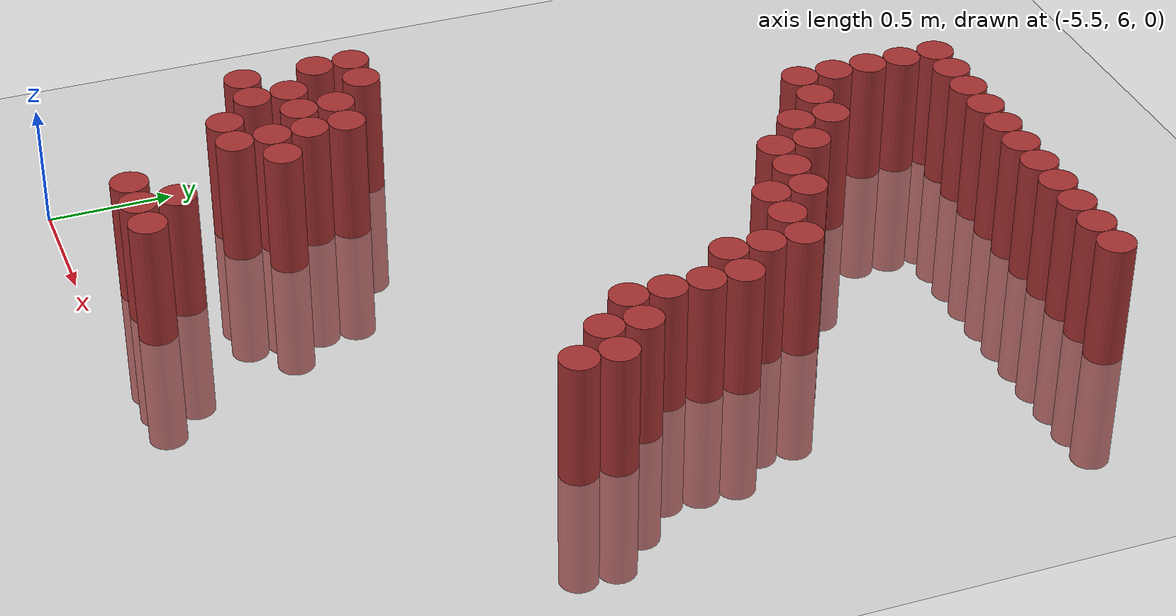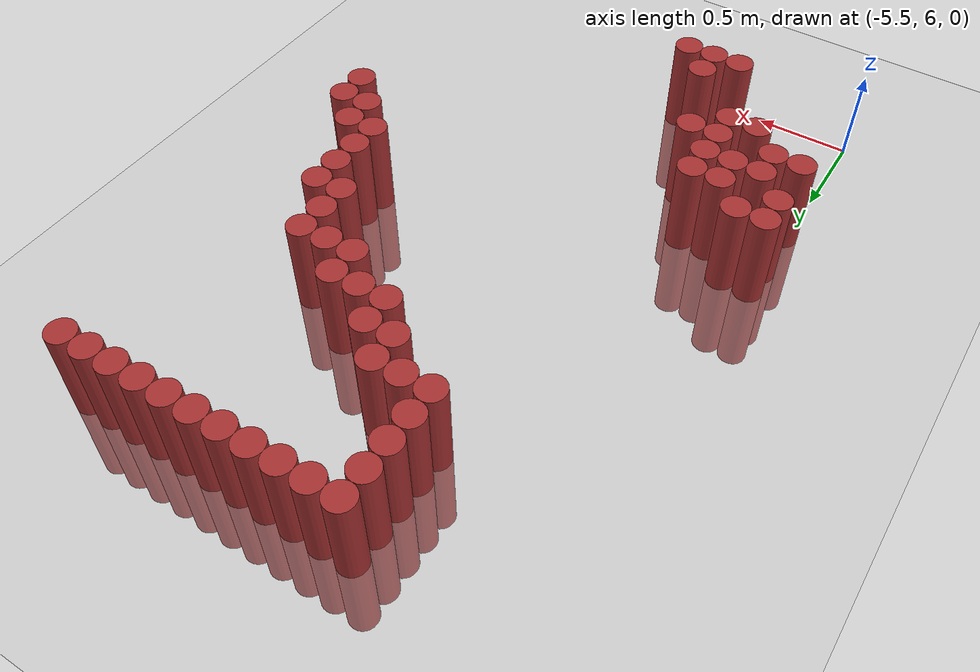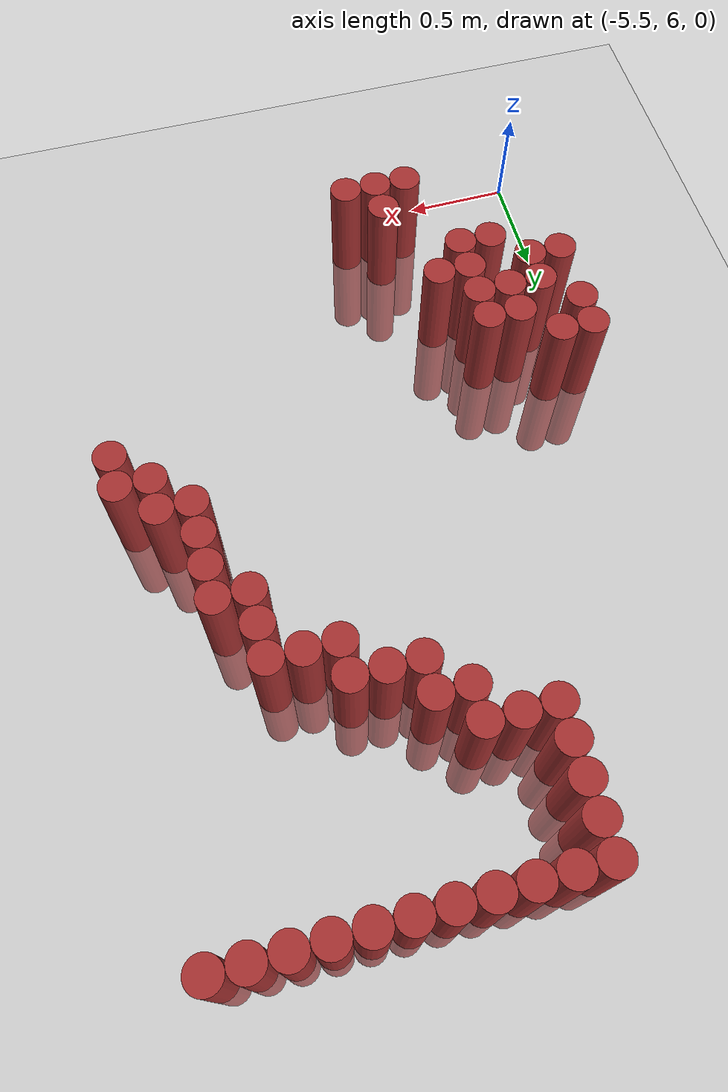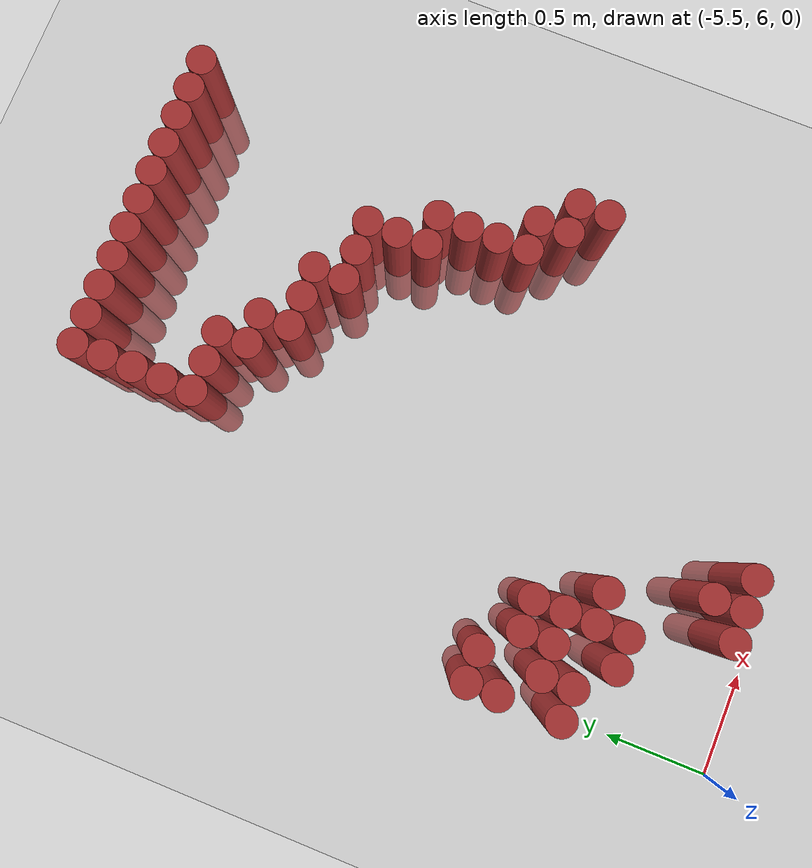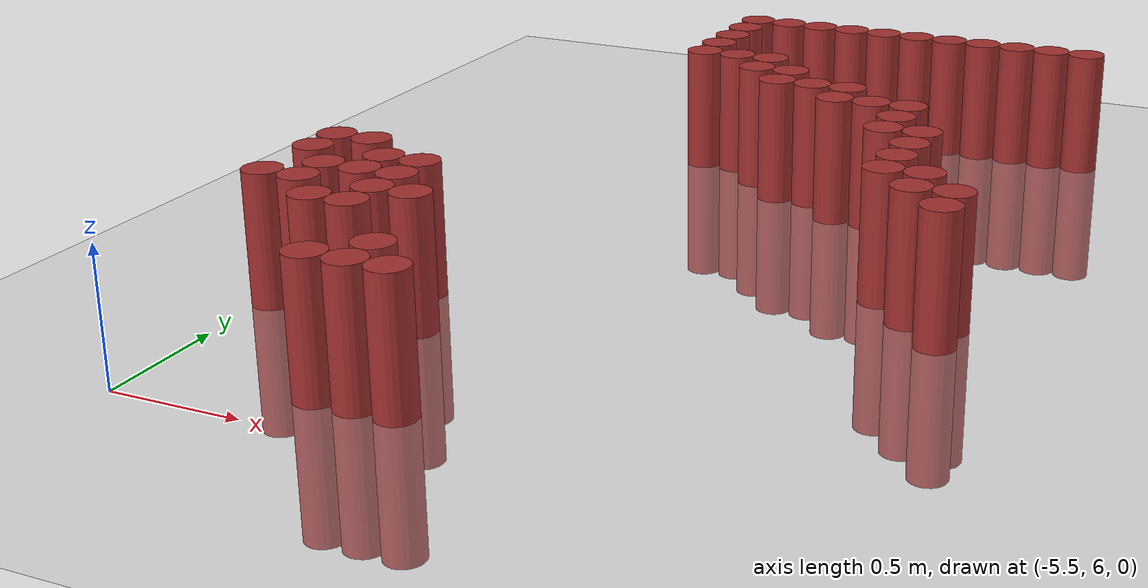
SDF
<sdf version="1.6">
 <world name="default">
  <model name="ground_plane">
   <static>1</static>
   <link name="link">
    <collision name="collision">
     <geometry><plane><normal>0 0 1</normal><size>100 100</size></plane></geometry>
     <surface><friction><ode><mu>100</mu><mu2>50</mu2></ode></friction></surface>
    </collision>
    <visual name="visual">
     <cast_shadows>0</cast_shadows>
     <geometry><plane><normal>0 0 1</normal><size>100 100</size></plane></geometry>
     <material>
      <script><uri>file://media/materials/scripts/gazebo.material</uri><name>Gazebo/Grey</name></script>
     </material>
    </visual>
   </link>
  </model>
  <model name="unit_cylinder_263">
   <static>1</static>
   <pose>-5.475000 6.825000 0.000000 0.000000 0.000000 0.000000</pose>
   <link name="link">
    <inertial>
     <mass>1</mass>
     <inertia><ixx>0.145833</ixx><ixy>0</ixy><ixz>0</ixz><iyy>0.145833</iyy><iyz>0</iyz><izz>0.125</izz></inertia>
    </inertial>
    <collision name="collision">
     <geometry><cylinder><radius>0.075000</radius><length>1</length></cylinder></geometry>
    </collision>
    <visual name="visual">
     <geometry><cylinder><radius>0.075000</radius><length>1</length></cylinder></geometry>
     <material>
      <ambient>0.648000 0.192000 0.192000 1</ambient>
      <diffuse>0.648000 0.192000 0.192000 1</diffuse>
     </material>
     <material>
      <script><name>Gazebo/Grey</name><uri>file://media/materials/scripts/gazebo.material</uri></script>
     </material>
    </visual>
   </link>
  </model>
  <model name="unit_cylinder_264">
   <static>1</static>
   <pose>-5.475000 7.125000 0.000000 0.000000 0.000000 0.000000</pose>
   <link name="link">
    <inertial>
     <mass>1</mass>
     <inertia><ixx>0.145833</ixx><ixy>0</ixy><ixz>0</ixz><iyy>0.145833</iyy><iyz>0</iyz><izz>0.125</izz></inertia>
    </inertial>
    <collision name="collision">
     <geometry><cylinder><radius>0.075000</radius><length>1</length></cylinder></geometry>
    </collision>
    <visual name="visual">
     <geometry><cylinder><radius>0.075000</radius><length>1</length></cylinder></geometry>
     <material>
      <ambient>0.648000 0.192000 0.192000 1</ambient>
      <diffuse>0.648000 0.192000 0.192000 1</diffuse>
     </material>
     <material>
      <script><name>Gazebo/Grey</name><uri>file://media/materials/scripts/gazebo.material</uri></script>
     </material>
    </visual>
   </link>
  </model>
  <model name="unit_cylinder_265">
   <static>1</static>
   <pose>-5.475000 7.275000 0.000000 0.000000 0.000000 0.000000</pose>
   <link name="link">
    <inertial>
     <mass>1</mass>
     <inertia><ixx>0.145833</ixx><ixy>0</ixy><ixz>0</ixz><iyy>0.145833</iyy><iyz>0</iyz><izz>0.125</izz></inertia>
    </inertial>
    <collision name="collision">
     <geometry><cylinder><radius>0.075000</radius><length>1</length></cylinder></geometry>
    </collision>
    <visual name="visual">
     <geometry><cylinder><radius>0.075000</radius><length>1</length></cylinder></geometry>
     <material>
      <ambient>0.648000 0.192000 0.192000 1</ambient>
      <diffuse>0.648000 0.192000 0.192000 1</diffuse>
     </material>
     <material>
      <script><name>Gazebo/Grey</name><uri>file://media/materials/scripts/gazebo.material</uri></script>
     </material>
    </visual>
   </link>
  </model>
  <model name="unit_cylinder_266">
   <static>1</static>
   <pose>-5.325000 6.825000 0.000000 0.000000 0.000000 0.000000</pose>
   <link name="link">
    <inertial>
     <mass>1</mass>
     <inertia><ixx>0.145833</ixx><ixy>0</ixy><ixz>0</ixz><iyy>0.145833</iyy><iyz>0</iyz><izz>0.125</izz></inertia>
    </inertial>
    <collision name="collision">
     <geometry><cylinder><radius>0.075000</radius><length>1</length></cylinder></geometry>
    </collision>
    <visual name="visual">
     <geometry><cylinder><radius>0.075000</radius><length>1</length></cylinder></geometry>
     <material>
      <ambient>0.648000 0.192000 0.192000 1</ambient>
      <diffuse>0.648000 0.192000 0.192000 1</diffuse>
     </material>
     <material>
      <script><name>Gazebo/Grey</name><uri>file://media/materials/scripts/gazebo.material</uri></script>
     </material>
    </visual>
   </link>
  </model>
  <model name="unit_cylinder_267">
   <static>1</static>
   <pose>-5.325000 6.975000 0.000000 0.000000 0.000000 0.000000</pose>
   <link name="link">
    <inertial>
     <mass>1</mass>
     <inertia><ixx>0.145833</ixx><ixy>0</ixy><ixz>0</ixz><iyy>0.145833</iyy><iyz>0</iyz><izz>0.125</izz></inertia>
    </inertial>
    <collision name="collision">
     <geometry><cylinder><radius>0.075000</radius><length>1</length></cylinder></geometry>
    </collision>
    <visual name="visual">
     <geometry><cylinder><radius>0.075000</radius><length>1</length></cylinder></geometry>
     <material>
      <ambient>0.648000 0.192000 0.192000 1</ambient>
      <diffuse>0.648000 0.192000 0.192000 1</diffuse>
     </material>
     <material>
      <script><name>Gazebo/Grey</name><uri>file://media/materials/scripts/gazebo.material</uri></script>
     </material>
    </visual>
   </link>
  </model>
  <model name="unit_cylinder_268">
   <static>1</static>
   <pose>-5.325000 7.275000 0.000000 0.000000 0.000000 0.000000</pose>
   <link name="link">
    <inertial>
     <mass>1</mass>
     <inertia><ixx>0.145833</ixx><ixy>0</ixy><ixz>0</ixz><iyy>0.145833</iyy><iyz>0</iyz><izz>0.125</izz></inertia>
    </inertial>
    <collision name="collision">
     <geometry><cylinder><radius>0.075000</radius><length>1</length></cylinder></geometry>
    </collision>
    <visual name="visual">
     <geometry><cylinder><radius>0.075000</radius><length>1</length></cylinder></geometry>
     <material>
      <ambient>0.648000 0.192000 0.192000 1</ambient>
      <diffuse>0.648000 0.192000 0.192000 1</diffuse>
     </material>
     <material>
      <script><name>Gazebo/Grey</name><uri>file://media/materials/scripts/gazebo.material</uri></script>
     </material>
    </visual>
   </link>
  </model>
  <model name="unit_cylinder_270">
   <static>1</static>
   <pose>-5.175000 6.675000 0.000000 0.000000 0.000000 0.000000</pose>
   <link name="link">
    <inertial>
     <mass>1</mass>
     <inertia><ixx>0.145833</ixx><ixy>0</ixy><ixz>0</ixz><iyy>0.145833</iyy><iyz>0</iyz><izz>0.125</izz></inertia>
    </inertial>
    <collision name="collision">
     <geometry><cylinder><radius>0.075000</radius><length>1</length></cylinder></geometry>
    </collision>
    <visual name="visual">
     <geometry><cylinder><radius>0.075000</radius><length>1</length></cylinder></geometry>
     <material>
      <ambient>0.648000 0.192000 0.192000 1</ambient>
      <diffuse>0.648000 0.192000 0.192000 1</diffuse>
     </material>
     <material>
      <script><name>Gazebo/Grey</name><uri>file://media/materials/scripts/gazebo.material</uri></script>
     </material>
    </visual>
   </link>
  </model>
  <model name="unit_cylinder_271">
   <static>1</static>
   <pose>-5.175000 6.975000 0.000000 0.000000 0.000000 0.000000</pose>
   <link name="link">
    <inertial>
     <mass>1</mass>
     <inertia><ixx>0.145833</ixx><ixy>0</ixy><ixz>0</ixz><iyy>0.145833</iyy><iyz>0</iyz><izz>0.125</izz></inertia>
    </inertial>
    <collision name="collision">
     <geometry><cylinder><radius>0.075000</radius><length>1</length></cylinder></geometry>
    </collision>
    <visual name="visual">
     <geometry><cylinder><radius>0.075000</radius><length>1</length></cylinder></geometry>
     <material>
      <ambient>0.648000 0.192000 0.192000 1</ambient>
      <diffuse>0.648000 0.192000 0.192000 1</diffuse>
     </material>
     <material>
      <script><name>Gazebo/Grey</name><uri>file://media/materials/scripts/gazebo.material</uri></script>
     </material>
    </visual>
   </link>
  </model>
  <model name="unit_cylinder_272">
   <static>1</static>
   <pose>-5.175000 7.125000 0.000000 0.000000 0.000000 0.000000</pose>
   <link name="link">
    <inertial>
     <mass>1</mass>
     <inertia><ixx>0.145833</ixx><ixy>0</ixy><ixz>0</ixz><iyy>0.145833</iyy><iyz>0</iyz><izz>0.125</izz></inertia>
    </inertial>
    <collision name="collision">
     <geometry><cylinder><radius>0.075000</radius><length>1</length></cylinder></geometry>
    </collision>
    <visual name="visual">
     <geometry><cylinder><radius>0.075000</radius><length>1</length></cylinder></geometry>
     <material>
      <ambient>0.648000 0.192000 0.192000 1</ambient>
      <diffuse>0.648000 0.192000 0.192000 1</diffuse>
     </material>
     <material>
      <script><name>Gazebo/Grey</name><uri>file://media/materials/scripts/gazebo.material</uri></script>
     </material>
    </visual>
   </link>
  </model>
  <model name="unit_cylinder_276">
   <static>1</static>
   <pose>-5.025000 6.675000 0.000000 0.000000 0.000000 0.000000</pose>
   <link name="link">
    <inertial>
     <mass>1</mass>
     <inertia><ixx>0.145833</ixx><ixy>0</ixy><ixz>0</ixz><iyy>0.145833</iyy><iyz>0</iyz><izz>0.125</izz></inertia>
    </inertial>
    <collision name="collision">
     <geometry><cylinder><radius>0.075000</radius><length>1</length></cylinder></geometry>
    </collision>
    <visual name="visual">
     <geometry><cylinder><radius>0.075000</radius><length>1</length></cylinder></geometry>
     <material>
      <ambient>0.648000 0.192000 0.192000 1</ambient>
      <diffuse>0.648000 0.192000 0.192000 1</diffuse>
     </material>
     <material>
      <script><name>Gazebo/Grey</name><uri>file://media/materials/scripts/gazebo.material</uri></script>
     </material>
    </visual>
   </link>
  </model>
  <model name="unit_cylinder_277">
   <static>1</static>
   <pose>-5.025000 6.825000 0.000000 0.000000 0.000000 0.000000</pose>
   <link name="link">
    <inertial>
     <mass>1</mass>
     <inertia><ixx>0.145833</ixx><ixy>0</ixy><ixz>0</ixz><iyy>0.145833</iyy><iyz>0</iyz><izz>0.125</izz></inertia>
    </inertial>
    <collision name="collision">
     <geometry><cylinder><radius>0.075000</radius><length>1</length></cylinder></geometry>
    </collision>
    <visual name="visual">
     <geometry><cylinder><radius>0.075000</radius><length>1</length></cylinder></geometry>
     <material>
      <ambient>0.648000 0.192000 0.192000 1</ambient>
      <diffuse>0.648000 0.192000 0.192000 1</diffuse>
     </material>
     <material>
      <script><name>Gazebo/Grey</name><uri>file://media/materials/scripts/gazebo.material</uri></script>
     </material>
    </visual>
   </link>
  </model>
  <model name="unit_cylinder_278">
   <static>1</static>
   <pose>-5.025000 6.975000 0.000000 0.000000 0.000000 0.000000</pose>
   <link name="link">
    <inertial>
     <mass>1</mass>
     <inertia><ixx>0.145833</ixx><ixy>0</ixy><ixz>0</ixz><iyy>0.145833</iyy><iyz>0</iyz><izz>0.125</izz></inertia>
    </inertial>
    <collision name="collision">
     <geometry><cylinder><radius>0.075000</radius><length>1</length></cylinder></geometry>
    </collision>
    <visual name="visual">
     <geometry><cylinder><radius>0.075000</radius><length>1</length></cylinder></geometry>
     <material>
      <ambient>0.648000 0.192000 0.192000 1</ambient>
      <diffuse>0.648000 0.192000 0.192000 1</diffuse>
     </material>
     <material>
      <script><name>Gazebo/Grey</name><uri>file://media/materials/scripts/gazebo.material</uri></script>
     </material>
    </visual>
   </link>
  </model>
  <model name="unit_cylinder_279">
   <static>1</static>
   <pose>-5.025000 7.125000 0.000000 0.000000 0.000000 0.000000</pose>
   <link name="link">
    <inertial>
     <mass>1</mass>
     <inertia><ixx>0.145833</ixx><ixy>0</ixy><ixz>0</ixz><iyy>0.145833</iyy><iyz>0</iyz><izz>0.125</izz></inertia>
    </inertial>
    <collision name="collision">
     <geometry><cylinder><radius>0.075000</radius><length>1</length></cylinder></geometry>
    </collision>
    <visual name="visual">
     <geometry><cylinder><radius>0.075000</radius><length>1</length></cylinder></geometry>
     <material>
      <ambient>0.648000 0.192000 0.192000 1</ambient>
      <diffuse>0.648000 0.192000 0.192000 1</diffuse>
     </material>
     <material>
      <script><name>Gazebo/Grey</name><uri>file://media/materials/scripts/gazebo.material</uri></script>
     </material>
    </visual>
   </link>
  </model>
  <model name="unit_cylinder_281">
   <static>1</static>
   <pose>-4.875000 6.225000 0.000000 0.000000 0.000000 0.000000</pose>
   <link name="link">
    <inertial>
     <mass>1</mass>
     <inertia><ixx>0.145833</ixx><ixy>0</ixy><ixz>0</ixz><iyy>0.145833</iyy><iyz>0</iyz><izz>0.125</izz></inertia>
    </inertial>
    <collision name="collision">
     <geometry><cylinder><radius>0.075000</radius><length>1</length></cylinder></geometry>
    </collision>
    <visual name="visual">
     <geometry><cylinder><radius>0.075000</radius><length>1</length></cylinder></geometry>
     <material>
      <ambient>0.648000 0.192000 0.192000 1</ambient>
      <diffuse>0.648000 0.192000 0.192000 1</diffuse>
     </material>
     <material>
      <script><name>Gazebo/Grey</name><uri>file://media/materials/scripts/gazebo.material</uri></script>
     </material>
    </visual>
   </link>
  </model>
  <model name="unit_cylinder_282">
   <static>1</static>
   <pose>-4.875000 6.825000 0.000000 0.000000 0.000000 0.000000</pose>
   <link name="link">
    <inertial>
     <mass>1</mass>
     <inertia><ixx>0.145833</ixx><ixy>0</ixy><ixz>0</ixz><iyy>0.145833</iyy><iyz>0</iyz><izz>0.125</izz></inertia>
    </inertial>
    <collision name="collision">
     <geometry><cylinder><radius>0.075000</radius><length>1</length></cylinder></geometry>
    </collision>
    <visual name="visual">
     <geometry><cylinder><radius>0.075000</radius><length>1</length></cylinder></geometry>
     <material>
      <ambient>0.648000 0.192000 0.192000 1</ambient>
      <diffuse>0.648000 0.192000 0.192000 1</diffuse>
     </material>
     <material>
      <script><name>Gazebo/Grey</name><uri>file://media/materials/scripts/gazebo.material</uri></script>
     </material>
    </visual>
   </link>
  </model>
  <model name="unit_cylinder_287">
   <static>1</static>
   <pose>-4.725000 6.225000 0.000000 0.000000 0.000000 0.000000</pose>
   <link name="link">
    <inertial>
     <mass>1</mass>
     <inertia><ixx>0.145833</ixx><ixy>0</ixy><ixz>0</ixz><iyy>0.145833</iyy><iyz>0</iyz><izz>0.125</izz></inertia>
    </inertial>
    <collision name="collision">
     <geometry><cylinder><radius>0.075000</radius><length>1</length></cylinder></geometry>
    </collision>
    <visual name="visual">
     <geometry><cylinder><radius>0.075000</radius><length>1</length></cylinder></geometry>
     <material>
      <ambient>0.648000 0.192000 0.192000 1</ambient>
      <diffuse>0.648000 0.192000 0.192000 1</diffuse>
     </material>
     <material>
      <script><name>Gazebo/Grey</name><uri>file://media/materials/scripts/gazebo.material</uri></script>
     </material>
    </visual>
   </link>
  </model>
  <model name="unit_cylinder_288">
   <static>1</static>
   <pose>-4.725000 6.375000 0.000000 0.000000 0.000000 0.000000</pose>
   <link name="link">
    <inertial>
     <mass>1</mass>
     <inertia><ixx>0.145833</ixx><ixy>0</ixy><ixz>0</ixz><iyy>0.145833</iyy><iyz>0</iyz><izz>0.125</izz></inertia>
    </inertial>
    <collision name="collision">
     <geometry><cylinder><radius>0.075000</radius><length>1</length></cylinder></geometry>
    </collision>
    <visual name="visual">
     <geometry><cylinder><radius>0.075000</radius><length>1</length></cylinder></geometry>
     <material>
      <ambient>0.648000 0.192000 0.192000 1</ambient>
      <diffuse>0.648000 0.192000 0.192000 1</diffuse>
     </material>
     <material>
      <script><name>Gazebo/Grey</name><uri>file://media/materials/scripts/gazebo.material</uri></script>
     </material>
    </visual>
   </link>
  </model>
  <model name="unit_cylinder_289">
   <static>1</static>
   <pose>-4.725000 8.925000 0.000000 0.000000 0.000000 0.000000</pose>
   <link name="link">
    <inertial>
     <mass>1</mass>
     <inertia><ixx>0.145833</ixx><ixy>0</ixy><ixz>0</ixz><iyy>0.145833</iyy><iyz>0</iyz><izz>0.125</izz></inertia>
    </inertial>
    <collision name="collision">
     <geometry><cylinder><radius>0.075000</radius><length>1</length></cylinder></geometry>
    </collision>
    <visual name="visual">
     <geometry><cylinder><radius>0.075000</radius><length>1</length></cylinder></geometry>
     <material>
      <ambient>0.648000 0.192000 0.192000 1</ambient>
      <diffuse>0.648000 0.192000 0.192000 1</diffuse>
     </material>
     <material>
      <script><name>Gazebo/Grey</name><uri>file://media/materials/scripts/gazebo.material</uri></script>
     </material>
    </visual>
   </link>
  </model>
  <model name="unit_cylinder_290">
   <static>1</static>
   <pose>-4.725000 9.075000 0.000000 0.000000 0.000000 0.000000</pose>
   <link name="link">
    <inertial>
     <mass>1</mass>
     <inertia><ixx>0.145833</ixx><ixy>0</ixy><ixz>0</ixz><iyy>0.145833</iyy><iyz>0</iyz><izz>0.125</izz></inertia>
    </inertial>
    <collision name="collision">
     <geometry><cylinder><radius>0.075000</radius><length>1</length></cylinder></geometry>
    </collision>
    <visual name="visual">
     <geometry><cylinder><radius>0.075000</radius><length>1</length></cylinder></geometry>
     <material>
      <ambient>0.648000 0.192000 0.192000 1</ambient>
      <diffuse>0.648000 0.192000 0.192000 1</diffuse>
     </material>
     <material>
      <script><name>Gazebo/Grey</name><uri>file://media/materials/scripts/gazebo.material</uri></script>
     </material>
    </visual>
   </link>
  </model>
  <model name="unit_cylinder_291">
   <static>1</static>
   <pose>-4.725000 9.225000 0.000000 0.000000 0.000000 0.000000</pose>
   <link name="link">
    <inertial>
     <mass>1</mass>
     <inertia><ixx>0.145833</ixx><ixy>0</ixy><ixz>0</ixz><iyy>0.145833</iyy><iyz>0</iyz><izz>0.125</izz></inertia>
    </inertial>
    <collision name="collision">
     <geometry><cylinder><radius>0.075000</radius><length>1</length></cylinder></geometry>
    </collision>
    <visual name="visual">
     <geometry><cylinder><radius>0.075000</radius><length>1</length></cylinder></geometry>
     <material>
      <ambient>0.648000 0.192000 0.192000 1</ambient>
      <diffuse>0.648000 0.192000 0.192000 1</diffuse>
     </material>
     <material>
      <script><name>Gazebo/Grey</name><uri>file://media/materials/scripts/gazebo.material</uri></script>
     </material>
    </visual>
   </link>
  </model>
  <model name="unit_cylinder_292">
   <static>1</static>
   <pose>-4.725000 9.375000 0.000000 0.000000 0.000000 0.000000</pose>
   <link name="link">
    <inertial>
     <mass>1</mass>
     <inertia><ixx>0.145833</ixx><ixy>0</ixy><ixz>0</ixz><iyy>0.145833</iyy><iyz>0</iyz><izz>0.125</izz></inertia>
    </inertial>
    <collision name="collision">
     <geometry><cylinder><radius>0.075000</radius><length>1</length></cylinder></geometry>
    </collision>
    <visual name="visual">
     <geometry><cylinder><radius>0.075000</radius><length>1</length></cylinder></geometry>
     <material>
      <ambient>0.648000 0.192000 0.192000 1</ambient>
      <diffuse>0.648000 0.192000 0.192000 1</diffuse>
     </material>
     <material>
      <script><name>Gazebo/Grey</name><uri>file://media/materials/scripts/gazebo.material</uri></script>
     </material>
    </visual>
   </link>
  </model>
  <model name="unit_cylinder_293">
   <static>1</static>
   <pose>-4.725000 9.525000 0.000000 0.000000 0.000000 0.000000</pose>
   <link name="link">
    <inertial>
     <mass>1</mass>
     <inertia><ixx>0.145833</ixx><ixy>0</ixy><ixz>0</ixz><iyy>0.145833</iyy><iyz>0</iyz><izz>0.125</izz></inertia>
    </inertial>
    <collision name="collision">
     <geometry><cylinder><radius>0.075000</radius><length>1</length></cylinder></geometry>
    </collision>
    <visual name="visual">
     <geometry><cylinder><radius>0.075000</radius><length>1</length></cylinder></geometry>
     <material>
      <ambient>0.648000 0.192000 0.192000 1</ambient>
      <diffuse>0.648000 0.192000 0.192000 1</diffuse>
     </material>
     <material>
      <script><name>Gazebo/Grey</name><uri>file://media/materials/scripts/gazebo.material</uri></script>
     </material>
    </visual>
   </link>
  </model>
  <model name="unit_cylinder_298">
   <static>1</static>
   <pose>-4.575000 6.225000 0.000000 0.000000 0.000000 0.000000</pose>
   <link name="link">
    <inertial>
     <mass>1</mass>
     <inertia><ixx>0.145833</ixx><ixy>0</ixy><ixz>0</ixz><iyy>0.145833</iyy><iyz>0</iyz><izz>0.125</izz></inertia>
    </inertial>
    <collision name="collision">
     <geometry><cylinder><radius>0.075000</radius><length>1</length></cylinder></geometry>
    </collision>
    <visual name="visual">
     <geometry><cylinder><radius>0.075000</radius><length>1</length></cylinder></geometry>
     <material>
      <ambient>0.648000 0.192000 0.192000 1</ambient>
      <diffuse>0.648000 0.192000 0.192000 1</diffuse>
     </material>
     <material>
      <script><name>Gazebo/Grey</name><uri>file://media/materials/scripts/gazebo.material</uri></script>
     </material>
    </visual>
   </link>
  </model>
  <model name="unit_cylinder_299">
   <static>1</static>
   <pose>-4.575000 8.925000 0.000000 0.000000 0.000000 0.000000</pose>
   <link name="link">
    <inertial>
     <mass>1</mass>
     <inertia><ixx>0.145833</ixx><ixy>0</ixy><ixz>0</ixz><iyy>0.145833</iyy><iyz>0</iyz><izz>0.125</izz></inertia>
    </inertial>
    <collision name="collision">
     <geometry><cylinder><radius>0.075000</radius><length>1</length></cylinder></geometry>
    </collision>
    <visual name="visual">
     <geometry><cylinder><radius>0.075000</radius><length>1</length></cylinder></geometry>
     <material>
      <ambient>0.648000 0.192000 0.192000 1</ambient>
      <diffuse>0.648000 0.192000 0.192000 1</diffuse>
     </material>
     <material>
      <script><name>Gazebo/Grey</name><uri>file://media/materials/scripts/gazebo.material</uri></script>
     </material>
    </visual>
   </link>
  </model>
  <model name="unit_cylinder_300">
   <static>1</static>
   <pose>-4.575000 9.525000 0.000000 0.000000 0.000000 0.000000</pose>
   <link name="link">
    <inertial>
     <mass>1</mass>
     <inertia><ixx>0.145833</ixx><ixy>0</ixy><ixz>0</ixz><iyy>0.145833</iyy><iyz>0</iyz><izz>0.125</izz></inertia>
    </inertial>
    <collision name="collision">
     <geometry><cylinder><radius>0.075000</radius><length>1</length></cylinder></geometry>
    </collision>
    <visual name="visual">
     <geometry><cylinder><radius>0.075000</radius><length>1</length></cylinder></geometry>
     <material>
      <ambient>0.648000 0.192000 0.192000 1</ambient>
      <diffuse>0.648000 0.192000 0.192000 1</diffuse>
     </material>
     <material>
      <script><name>Gazebo/Grey</name><uri>file://media/materials/scripts/gazebo.material</uri></script>
     </material>
    </visual>
   </link>
  </model>
  <model name="unit_cylinder_307">
   <static>1</static>
   <pose>-4.425000 8.775000 0.000000 0.000000 0.000000 0.000000</pose>
   <link name="link">
    <inertial>
     <mass>1</mass>
     <inertia><ixx>0.145833</ixx><ixy>0</ixy><ixz>0</ixz><iyy>0.145833</iyy><iyz>0</iyz><izz>0.125</izz></inertia>
    </inertial>
    <collision name="collision">
     <geometry><cylinder><radius>0.075000</radius><length>1</length></cylinder></geometry>
    </collision>
    <visual name="visual">
     <geometry><cylinder><radius>0.075000</radius><length>1</length></cylinder></geometry>
     <material>
      <ambient>0.648000 0.192000 0.192000 1</ambient>
      <diffuse>0.648000 0.192000 0.192000 1</diffuse>
     </material>
     <material>
      <script><name>Gazebo/Grey</name><uri>file://media/materials/scripts/gazebo.material</uri></script>
     </material>
    </visual>
   </link>
  </model>
  <model name="unit_cylinder_308">
   <static>1</static>
   <pose>-4.425000 8.925000 0.000000 0.000000 0.000000 0.000000</pose>
   <link name="link">
    <inertial>
     <mass>1</mass>
     <inertia><ixx>0.145833</ixx><ixy>0</ixy><ixz>0</ixz><iyy>0.145833</iyy><iyz>0</iyz><izz>0.125</izz></inertia>
    </inertial>
    <collision name="collision">
     <geometry><cylinder><radius>0.075000</radius><length>1</length></cylinder></geometry>
    </collision>
    <visual name="visual">
     <geometry><cylinder><radius>0.075000</radius><length>1</length></cylinder></geometry>
     <material>
      <ambient>0.648000 0.192000 0.192000 1</ambient>
      <diffuse>0.648000 0.192000 0.192000 1</diffuse>
     </material>
     <material>
      <script><name>Gazebo/Grey</name><uri>file://media/materials/scripts/gazebo.material</uri></script>
     </material>
    </visual>
   </link>
  </model>
  <model name="unit_cylinder_309">
   <static>1</static>
   <pose>-4.425000 9.525000 0.000000 0.000000 0.000000 0.000000</pose>
   <link name="link">
    <inertial>
     <mass>1</mass>
     <inertia><ixx>0.145833</ixx><ixy>0</ixy><ixz>0</ixz><iyy>0.145833</iyy><iyz>0</iyz><izz>0.125</izz></inertia>
    </inertial>
    <collision name="collision">
     <geometry><cylinder><radius>0.075000</radius><length>1</length></cylinder></geometry>
    </collision>
    <visual name="visual">
     <geometry><cylinder><radius>0.075000</radius><length>1</length></cylinder></geometry>
     <material>
      <ambient>0.648000 0.192000 0.192000 1</ambient>
      <diffuse>0.648000 0.192000 0.192000 1</diffuse>
     </material>
     <material>
      <script><name>Gazebo/Grey</name><uri>file://media/materials/scripts/gazebo.material</uri></script>
     </material>
    </visual>
   </link>
  </model>
  <model name="unit_cylinder_312">
   <static>1</static>
   <pose>-4.275000 8.625000 0.000000 0.000000 0.000000 0.000000</pose>
   <link name="link">
    <inertial>
     <mass>1</mass>
     <inertia><ixx>0.145833</ixx><ixy>0</ixy><ixz>0</ixz><iyy>0.145833</iyy><iyz>0</iyz><izz>0.125</izz></inertia>
    </inertial>
    <collision name="collision">
     <geometry><cylinder><radius>0.075000</radius><length>1</length></cylinder></geometry>
    </collision>
    <visual name="visual">
     <geometry><cylinder><radius>0.075000</radius><length>1</length></cylinder></geometry>
     <material>
      <ambient>0.648000 0.192000 0.192000 1</ambient>
      <diffuse>0.648000 0.192000 0.192000 1</diffuse>
     </material>
     <material>
      <script><name>Gazebo/Grey</name><uri>file://media/materials/scripts/gazebo.material</uri></script>
     </material>
    </visual>
   </link>
  </model>
  <model name="unit_cylinder_313">
   <static>1</static>
   <pose>-4.275000 8.775000 0.000000 0.000000 0.000000 0.000000</pose>
   <link name="link">
    <inertial>
     <mass>1</mass>
     <inertia><ixx>0.145833</ixx><ixy>0</ixy><ixz>0</ixz><iyy>0.145833</iyy><iyz>0</iyz><izz>0.125</izz></inertia>
    </inertial>
    <collision name="collision">
     <geometry><cylinder><radius>0.075000</radius><length>1</length></cylinder></geometry>
    </collision>
    <visual name="visual">
     <geometry><cylinder><radius>0.075000</radius><length>1</length></cylinder></geometry>
     <material>
      <ambient>0.648000 0.192000 0.192000 1</ambient>
      <diffuse>0.648000 0.192000 0.192000 1</diffuse>
     </material>
     <material>
      <script><name>Gazebo/Grey</name><uri>file://media/materials/scripts/gazebo.material</uri></script>
     </material>
    </visual>
   </link>
  </model>
  <model name="unit_cylinder_314">
   <static>1</static>
   <pose>-4.275000 9.525000 0.000000 0.000000 0.000000 0.000000</pose>
   <link name="link">
    <inertial>
     <mass>1</mass>
     <inertia><ixx>0.145833</ixx><ixy>0</ixy><ixz>0</ixz><iyy>0.145833</iyy><iyz>0</iyz><izz>0.125</izz></inertia>
    </inertial>
    <collision name="collision">
     <geometry><cylinder><radius>0.075000</radius><length>1</length></cylinder></geometry>
    </collision>
    <visual name="visual">
     <geometry><cylinder><radius>0.075000</radius><length>1</length></cylinder></geometry>
     <material>
      <ambient>0.648000 0.192000 0.192000 1</ambient>
      <diffuse>0.648000 0.192000 0.192000 1</diffuse>
     </material>
     <material>
      <script><name>Gazebo/Grey</name><uri>file://media/materials/scripts/gazebo.material</uri></script>
     </material>
    </visual>
   </link>
  </model>
  <model name="unit_cylinder_315">
   <static>1</static>
   <pose>-4.125000 8.625000 0.000000 0.000000 0.000000 0.000000</pose>
   <link name="link">
    <inertial>
     <mass>1</mass>
     <inertia><ixx>0.145833</ixx><ixy>0</ixy><ixz>0</ixz><iyy>0.145833</iyy><iyz>0</iyz><izz>0.125</izz></inertia>
    </inertial>
    <collision name="collision">
     <geometry><cylinder><radius>0.075000</radius><length>1</length></cylinder></geometry>
    </collision>
    <visual name="visual">
     <geometry><cylinder><radius>0.075000</radius><length>1</length></cylinder></geometry>
     <material>
      <ambient>0.648000 0.192000 0.192000 1</ambient>
      <diffuse>0.648000 0.192000 0.192000 1</diffuse>
     </material>
     <material>
      <script><name>Gazebo/Grey</name><uri>file://media/materials/scripts/gazebo.material</uri></script>
     </material>
    </visual>
   </link>
  </model>
  <model name="unit_cylinder_316">
   <static>1</static>
   <pose>-4.125000 9.525000 0.000000 0.000000 0.000000 0.000000</pose>
   <link name="link">
    <inertial>
     <mass>1</mass>
     <inertia><ixx>0.145833</ixx><ixy>0</ixy><ixz>0</ixz><iyy>0.145833</iyy><iyz>0</iyz><izz>0.125</izz></inertia>
    </inertial>
    <collision name="collision">
     <geometry><cylinder><radius>0.075000</radius><length>1</length></cylinder></geometry>
    </collision>
    <visual name="visual">
     <geometry><cylinder><radius>0.075000</radius><length>1</length></cylinder></geometry>
     <material>
      <ambient>0.648000 0.192000 0.192000 1</ambient>
      <diffuse>0.648000 0.192000 0.192000 1</diffuse>
     </material>
     <material>
      <script><name>Gazebo/Grey</name><uri>file://media/materials/scripts/gazebo.material</uri></script>
     </material>
    </visual>
   </link>
  </model>
  <model name="unit_cylinder_317">
   <static>1</static>
   <pose>-3.975000 8.475000 0.000000 0.000000 0.000000 0.000000</pose>
   <link name="link">
    <inertial>
     <mass>1</mass>
     <inertia><ixx>0.145833</ixx><ixy>0</ixy><ixz>0</ixz><iyy>0.145833</iyy><iyz>0</iyz><izz>0.125</izz></inertia>
    </inertial>
    <collision name="collision">
     <geometry><cylinder><radius>0.075000</radius><length>1</length></cylinder></geometry>
    </collision>
    <visual name="visual">
     <geometry><cylinder><radius>0.075000</radius><length>1</length></cylinder></geometry>
     <material>
      <ambient>0.648000 0.192000 0.192000 1</ambient>
      <diffuse>0.648000 0.192000 0.192000 1</diffuse>
     </material>
     <material>
      <script><name>Gazebo/Grey</name><uri>file://media/materials/scripts/gazebo.material</uri></script>
     </material>
    </visual>
   </link>
  </model>
  <model name="unit_cylinder_318">
   <static>1</static>
   <pose>-3.975000 8.625000 0.000000 0.000000 0.000000 0.000000</pose>
   <link name="link">
    <inertial>
     <mass>1</mass>
     <inertia><ixx>0.145833</ixx><ixy>0</ixy><ixz>0</ixz><iyy>0.145833</iyy><iyz>0</iyz><izz>0.125</izz></inertia>
    </inertial>
    <collision name="collision">
     <geometry><cylinder><radius>0.075000</radius><length>1</length></cylinder></geometry>
    </collision>
    <visual name="visual">
     <geometry><cylinder><radius>0.075000</radius><length>1</length></cylinder></geometry>
     <material>
      <ambient>0.648000 0.192000 0.192000 1</ambient>
      <diffuse>0.648000 0.192000 0.192000 1</diffuse>
     </material>
     <material>
      <script><name>Gazebo/Grey</name><uri>file://media/materials/scripts/gazebo.material</uri></script>
     </material>
    </visual>
   </link>
  </model>
  <model name="unit_cylinder_319">
   <static>1</static>
   <pose>-3.975000 9.525000 0.000000 0.000000 0.000000 0.000000</pose>
   <link name="link">
    <inertial>
     <mass>1</mass>
     <inertia><ixx>0.145833</ixx><ixy>0</ixy><ixz>0</ixz><iyy>0.145833</iyy><iyz>0</iyz><izz>0.125</izz></inertia>
    </inertial>
    <collision name="collision">
     <geometry><cylinder><radius>0.075000</radius><length>1</length></cylinder></geometry>
    </collision>
    <visual name="visual">
     <geometry><cylinder><radius>0.075000</radius><length>1</length></cylinder></geometry>
     <material>
      <ambient>0.648000 0.192000 0.192000 1</ambient>
      <diffuse>0.648000 0.192000 0.192000 1</diffuse>
     </material>
     <material>
      <script><name>Gazebo/Grey</name><uri>file://media/materials/scripts/gazebo.material</uri></script>
     </material>
    </visual>
   </link>
  </model>
  <model name="unit_cylinder_320">
   <static>1</static>
   <pose>-3.825000 8.475000 0.000000 0.000000 0.000000 0.000000</pose>
   <link name="link">
    <inertial>
     <mass>1</mass>
     <inertia><ixx>0.145833</ixx><ixy>0</ixy><ixz>0</ixz><iyy>0.145833</iyy><iyz>0</iyz><izz>0.125</izz></inertia>
    </inertial>
    <collision name="collision">
     <geometry><cylinder><radius>0.075000</radius><length>1</length></cylinder></geometry>
    </collision>
    <visual name="visual">
     <geometry><cylinder><radius>0.075000</radius><length>1</length></cylinder></geometry>
     <material>
      <ambient>0.648000 0.192000 0.192000 1</ambient>
      <diffuse>0.648000 0.192000 0.192000 1</diffuse>
     </material>
     <material>
      <script><name>Gazebo/Grey</name><uri>file://media/materials/scripts/gazebo.material</uri></script>
     </material>
    </visual>
   </link>
  </model>
  <model name="unit_cylinder_321">
   <static>1</static>
   <pose>-3.825000 9.525000 0.000000 0.000000 0.000000 0.000000</pose>
   <link name="link">
    <inertial>
     <mass>1</mass>
     <inertia><ixx>0.145833</ixx><ixy>0</ixy><ixz>0</ixz><iyy>0.145833</iyy><iyz>0</iyz><izz>0.125</izz></inertia>
    </inertial>
    <collision name="collision">
     <geometry><cylinder><radius>0.075000</radius><length>1</length></cylinder></geometry>
    </collision>
    <visual name="visual">
     <geometry><cylinder><radius>0.075000</radius><length>1</length></cylinder></geometry>
     <material>
      <ambient>0.648000 0.192000 0.192000 1</ambient>
      <diffuse>0.648000 0.192000 0.192000 1</diffuse>
     </material>
     <material>
      <script><name>Gazebo/Grey</name><uri>file://media/materials/scripts/gazebo.material</uri></script>
     </material>
    </visual>
   </link>
  </model>
  <model name="unit_cylinder_322">
   <static>1</static>
   <pose>-3.675000 8.175000 0.000000 0.000000 0.000000 0.000000</pose>
   <link name="link">
    <inertial>
     <mass>1</mass>
     <inertia><ixx>0.145833</ixx><ixy>0</ixy><ixz>0</ixz><iyy>0.145833</iyy><iyz>0</iyz><izz>0.125</izz></inertia>
    </inertial>
    <collision name="collision">
     <geometry><cylinder><radius>0.075000</radius><length>1</length></cylinder></geometry>
    </collision>
    <visual name="visual">
     <geometry><cylinder><radius>0.075000</radius><length>1</length></cylinder></geometry>
     <material>
      <ambient>0.648000 0.192000 0.192000 1</ambient>
      <diffuse>0.648000 0.192000 0.192000 1</diffuse>
     </material>
     <material>
      <script><name>Gazebo/Grey</name><uri>file://media/materials/scripts/gazebo.material</uri></script>
     </material>
    </visual>
   </link>
  </model>
  <model name="unit_cylinder_323">
   <static>1</static>
   <pose>-3.675000 8.325000 0.000000 0.000000 0.000000 0.000000</pose>
   <link name="link">
    <inertial>
     <mass>1</mass>
     <inertia><ixx>0.145833</ixx><ixy>0</ixy><ixz>0</ixz><iyy>0.145833</iyy><iyz>0</iyz><izz>0.125</izz></inertia>
    </inertial>
    <collision name="collision">
     <geometry><cylinder><radius>0.075000</radius><length>1</length></cylinder></geometry>
    </collision>
    <visual name="visual">
     <geometry><cylinder><radius>0.075000</radius><length>1</length></cylinder></geometry>
     <material>
      <ambient>0.648000 0.192000 0.192000 1</ambient>
      <diffuse>0.648000 0.192000 0.192000 1</diffuse>
     </material>
     <material>
      <script><name>Gazebo/Grey</name><uri>file://media/materials/scripts/gazebo.material</uri></script>
     </material>
    </visual>
   </link>
  </model>
  <model name="unit_cylinder_324">
   <static>1</static>
   <pose>-3.675000 8.475000 0.000000 0.000000 0.000000 0.000000</pose>
   <link name="link">
    <inertial>
     <mass>1</mass>
     <inertia><ixx>0.145833</ixx><ixy>0</ixy><ixz>0</ixz><iyy>0.145833</iyy><iyz>0</iyz><izz>0.125</izz></inertia>
    </inertial>
    <collision name="collision">
     <geometry><cylinder><radius>0.075000</radius><length>1</length></cylinder></geometry>
    </collision>
    <visual name="visual">
     <geometry><cylinder><radius>0.075000</radius><length>1</length></cylinder></geometry>
     <material>
      <ambient>0.648000 0.192000 0.192000 1</ambient>
      <diffuse>0.648000 0.192000 0.192000 1</diffuse>
     </material>
     <material>
      <script><name>Gazebo/Grey</name><uri>file://media/materials/scripts/gazebo.material</uri></script>
     </material>
    </visual>
   </link>
  </model>
  <model name="unit_cylinder_325">
   <static>1</static>
   <pose>-3.675000 9.525000 0.000000 0.000000 0.000000 0.000000</pose>
   <link name="link">
    <inertial>
     <mass>1</mass>
     <inertia><ixx>0.145833</ixx><ixy>0</ixy><ixz>0</ixz><iyy>0.145833</iyy><iyz>0</iyz><izz>0.125</izz></inertia>
    </inertial>
    <collision name="collision">
     <geometry><cylinder><radius>0.075000</radius><length>1</length></cylinder></geometry>
    </collision>
    <visual name="visual">
     <geometry><cylinder><radius>0.075000</radius><length>1</length></cylinder></geometry>
     <material>
      <ambient>0.648000 0.192000 0.192000 1</ambient>
      <diffuse>0.648000 0.192000 0.192000 1</diffuse>
     </material>
     <material>
      <script><name>Gazebo/Grey</name><uri>file://media/materials/scripts/gazebo.material</uri></script>
     </material>
    </visual>
   </link>
  </model>
  <model name="unit_cylinder_326">
   <static>1</static>
   <pose>-3.525000 7.725000 0.000000 0.000000 0.000000 0.000000</pose>
   <link name="link">
    <inertial>
     <mass>1</mass>
     <inertia><ixx>0.145833</ixx><ixy>0</ixy><ixz>0</ixz><iyy>0.145833</iyy><iyz>0</iyz><izz>0.125</izz></inertia>
    </inertial>
    <collision name="collision">
     <geometry><cylinder><radius>0.075000</radius><length>1</length></cylinder></geometry>
    </collision>
    <visual name="visual">
     <geometry><cylinder><radius>0.075000</radius><length>1</length></cylinder></geometry>
     <material>
      <ambient>0.648000 0.192000 0.192000 1</ambient>
      <diffuse>0.648000 0.192000 0.192000 1</diffuse>
     </material>
     <material>
      <script><name>Gazebo/Grey</name><uri>file://media/materials/scripts/gazebo.material</uri></script>
     </material>
    </visual>
   </link>
  </model>
  <model name="unit_cylinder_327">
   <static>1</static>
   <pose>-3.525000 7.875000 0.000000 0.000000 0.000000 0.000000</pose>
   <link name="link">
    <inertial>
     <mass>1</mass>
     <inertia><ixx>0.145833</ixx><ixy>0</ixy><ixz>0</ixz><iyy>0.145833</iyy><iyz>0</iyz><izz>0.125</izz></inertia>
    </inertial>
    <collision name="collision">
     <geometry><cylinder><radius>0.075000</radius><length>1</length></cylinder></geometry>
    </collision>
    <visual name="visual">
     <geometry><cylinder><radius>0.075000</radius><length>1</length></cylinder></geometry>
     <material>
      <ambient>0.648000 0.192000 0.192000 1</ambient>
      <diffuse>0.648000 0.192000 0.192000 1</diffuse>
     </material>
     <material>
      <script><name>Gazebo/Grey</name><uri>file://media/materials/scripts/gazebo.material</uri></script>
     </material>
    </visual>
   </link>
  </model>
  <model name="unit_cylinder_328">
   <static>1</static>
   <pose>-3.525000 8.025000 0.000000 0.000000 0.000000 0.000000</pose>
   <link name="link">
    <inertial>
     <mass>1</mass>
     <inertia><ixx>0.145833</ixx><ixy>0</ixy><ixz>0</ixz><iyy>0.145833</iyy><iyz>0</iyz><izz>0.125</izz></inertia>
    </inertial>
    <collision name="collision">
     <geometry><cylinder><radius>0.075000</radius><length>1</length></cylinder></geometry>
    </collision>
    <visual name="visual">
     <geometry><cylinder><radius>0.075000</radius><length>1</length></cylinder></geometry>
     <material>
      <ambient>0.648000 0.192000 0.192000 1</ambient>
      <diffuse>0.648000 0.192000 0.192000 1</diffuse>
     </material>
     <material>
      <script><name>Gazebo/Grey</name><uri>file://media/materials/scripts/gazebo.material</uri></script>
     </material>
    </visual>
   </link>
  </model>
  <model name="unit_cylinder_329">
   <static>1</static>
   <pose>-3.525000 8.175000 0.000000 0.000000 0.000000 0.000000</pose>
   <link name="link">
    <inertial>
     <mass>1</mass>
     <inertia><ixx>0.145833</ixx><ixy>0</ixy><ixz>0</ixz><iyy>0.145833</iyy><iyz>0</iyz><izz>0.125</izz></inertia>
    </inertial>
    <collision name="collision">
     <geometry><cylinder><radius>0.075000</radius><length>1</length></cylinder></geometry>
    </collision>
    <visual name="visual">
     <geometry><cylinder><radius>0.075000</radius><length>1</length></cylinder></geometry>
     <material>
      <ambient>0.648000 0.192000 0.192000 1</ambient>
      <diffuse>0.648000 0.192000 0.192000 1</diffuse>
     </material>
     <material>
      <script><name>Gazebo/Grey</name><uri>file://media/materials/scripts/gazebo.material</uri></script>
     </material>
    </visual>
   </link>
  </model>
  <model name="unit_cylinder_330">
   <static>1</static>
   <pose>-3.525000 9.525000 0.000000 0.000000 0.000000 0.000000</pose>
   <link name="link">
    <inertial>
     <mass>1</mass>
     <inertia><ixx>0.145833</ixx><ixy>0</ixy><ixz>0</ixz><iyy>0.145833</iyy><iyz>0</iyz><izz>0.125</izz></inertia>
    </inertial>
    <collision name="collision">
     <geometry><cylinder><radius>0.075000</radius><length>1</length></cylinder></geometry>
    </collision>
    <visual name="visual">
     <geometry><cylinder><radius>0.075000</radius><length>1</length></cylinder></geometry>
     <material>
      <ambient>0.648000 0.192000 0.192000 1</ambient>
      <diffuse>0.648000 0.192000 0.192000 1</diffuse>
     </material>
     <material>
      <script><name>Gazebo/Grey</name><uri>file://media/materials/scripts/gazebo.material</uri></script>
     </material>
    </visual>
   </link>
  </model>
  <model name="unit_cylinder_331">
   <static>1</static>
   <pose>-3.375000 7.575000 0.000000 0.000000 0.000000 0.000000</pose>
   <link name="link">
    <inertial>
     <mass>1</mass>
     <inertia><ixx>0.145833</ixx><ixy>0</ixy><ixz>0</ixz><iyy>0.145833</iyy><iyz>0</iyz><izz>0.125</izz></inertia>
    </inertial>
    <collision name="collision">
     <geometry><cylinder><radius>0.075000</radius><length>1</length></cylinder></geometry>
    </collision>
    <visual name="visual">
     <geometry><cylinder><radius>0.075000</radius><length>1</length></cylinder></geometry>
     <material>
      <ambient>0.648000 0.192000 0.192000 1</ambient>
      <diffuse>0.648000 0.192000 0.192000 1</diffuse>
     </material>
     <material>
      <script><name>Gazebo/Grey</name><uri>file://media/materials/scripts/gazebo.material</uri></script>
     </material>
    </visual>
   </link>
  </model>
  <model name="unit_cylinder_332">
   <static>1</static>
   <pose>-3.375000 7.725000 0.000000 0.000000 0.000000 0.000000</pose>
   <link name="link">
    <inertial>
     <mass>1</mass>
     <inertia><ixx>0.145833</ixx><ixy>0</ixy><ixz>0</ixz><iyy>0.145833</iyy><iyz>0</iyz><izz>0.125</izz></inertia>
    </inertial>
    <collision name="collision">
     <geometry><cylinder><radius>0.075000</radius><length>1</length></cylinder></geometry>
    </collision>
    <visual name="visual">
     <geometry><cylinder><radius>0.075000</radius><length>1</length></cylinder></geometry>
     <material>
      <ambient>0.648000 0.192000 0.192000 1</ambient>
      <diffuse>0.648000 0.192000 0.192000 1</diffuse>
     </material>
     <material>
      <script><name>Gazebo/Grey</name><uri>file://media/materials/scripts/gazebo.material</uri></script>
     </material>
    </visual>
   </link>
  </model>
  <model name="unit_cylinder_333">
   <static>1</static>
   <pose>-3.375000 9.525000 0.000000 0.000000 0.000000 0.000000</pose>
   <link name="link">
    <inertial>
     <mass>1</mass>
     <inertia><ixx>0.145833</ixx><ixy>0</ixy><ixz>0</ixz><iyy>0.145833</iyy><iyz>0</iyz><izz>0.125</izz></inertia>
    </inertial>
    <collision name="collision">
     <geometry><cylinder><radius>0.075000</radius><length>1</length></cylinder></geometry>
    </collision>
    <visual name="visual">
     <geometry><cylinder><radius>0.075000</radius><length>1</length></cylinder></geometry>
     <material>
      <ambient>0.648000 0.192000 0.192000 1</ambient>
      <diffuse>0.648000 0.192000 0.192000 1</diffuse>
     </material>
     <material>
      <script><name>Gazebo/Grey</name><uri>file://media/materials/scripts/gazebo.material</uri></script>
     </material>
    </visual>
   </link>
  </model>
  <model name="unit_cylinder_334">
   <static>1</static>
   <pose>-3.225000 7.425000 0.000000 0.000000 0.000000 0.000000</pose>
   <link name="link">
    <inertial>
     <mass>1</mass>
     <inertia><ixx>0.145833</ixx><ixy>0</ixy><ixz>0</ixz><iyy>0.145833</iyy><iyz>0</iyz><izz>0.125</izz></inertia>
    </inertial>
    <collision name="collision">
     <geometry><cylinder><radius>0.075000</radius><length>1</length></cylinder></geometry>
    </collision>
    <visual name="visual">
     <geometry><cylinder><radius>0.075000</radius><length>1</length></cylinder></geometry>
     <material>
      <ambient>0.648000 0.192000 0.192000 1</ambient>
      <diffuse>0.648000 0.192000 0.192000 1</diffuse>
     </material>
     <material>
      <script><name>Gazebo/Grey</name><uri>file://media/materials/scripts/gazebo.material</uri></script>
     </material>
    </visual>
   </link>
  </model>
  <model name="unit_cylinder_335">
   <static>1</static>
   <pose>-3.225000 7.575000 0.000000 0.000000 0.000000 0.000000</pose>
   <link name="link">
    <inertial>
     <mass>1</mass>
     <inertia><ixx>0.145833</ixx><ixy>0</ixy><ixz>0</ixz><iyy>0.145833</iyy><iyz>0</iyz><izz>0.125</izz></inertia>
    </inertial>
    <collision name="collision">
     <geometry><cylinder><radius>0.075000</radius><length>1</length></cylinder></geometry>
    </collision>
    <visual name="visual">
     <geometry><cylinder><radius>0.075000</radius><length>1</length></cylinder></geometry>
     <material>
      <ambient>0.648000 0.192000 0.192000 1</ambient>
      <diffuse>0.648000 0.192000 0.192000 1</diffuse>
     </material>
     <material>
      <script><name>Gazebo/Grey</name><uri>file://media/materials/scripts/gazebo.material</uri></script>
     </material>
    </visual>
   </link>
  </model>
  <model name="unit_cylinder_336">
   <static>1</static>
   <pose>-3.225000 9.525000 0.000000 0.000000 0.000000 0.000000</pose>
   <link name="link">
    <inertial>
     <mass>1</mass>
     <inertia><ixx>0.145833</ixx><ixy>0</ixy><ixz>0</ixz><iyy>0.145833</iyy><iyz>0</iyz><izz>0.125</izz></inertia>
    </inertial>
    <collision name="collision">
     <geometry><cylinder><radius>0.075000</radius><length>1</length></cylinder></geometry>
    </collision>
    <visual name="visual">
     <geometry><cylinder><radius>0.075000</radius><length>1</length></cylinder></geometry>
     <material>
      <ambient>0.648000 0.192000 0.192000 1</ambient>
      <diffuse>0.648000 0.192000 0.192000 1</diffuse>
     </material>
     <material>
      <script><name>Gazebo/Grey</name><uri>file://media/materials/scripts/gazebo.material</uri></script>
     </material>
    </visual>
   </link>
  </model>
 </world>
</sdf>
